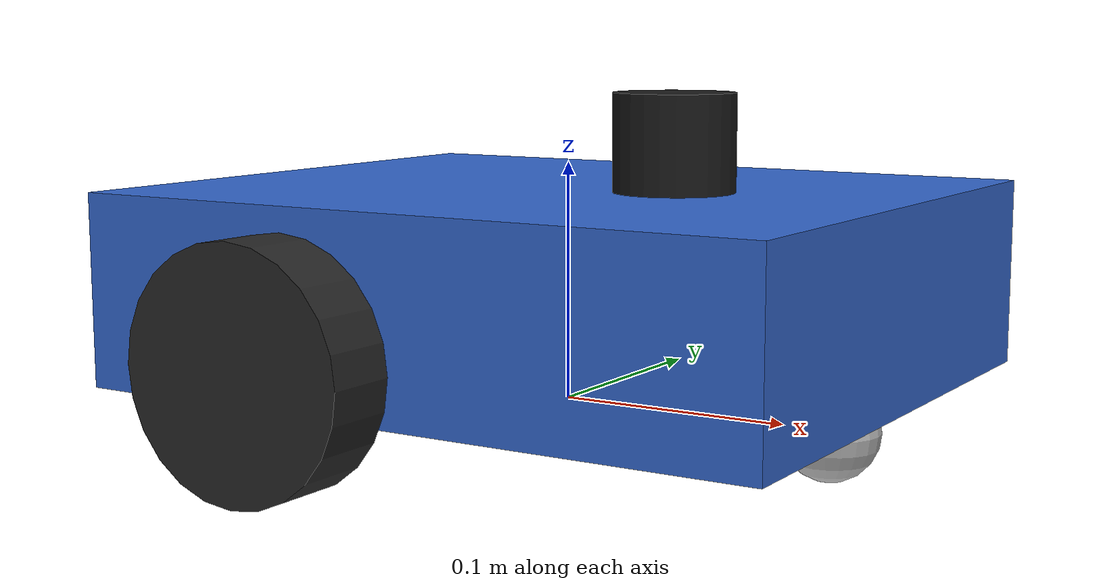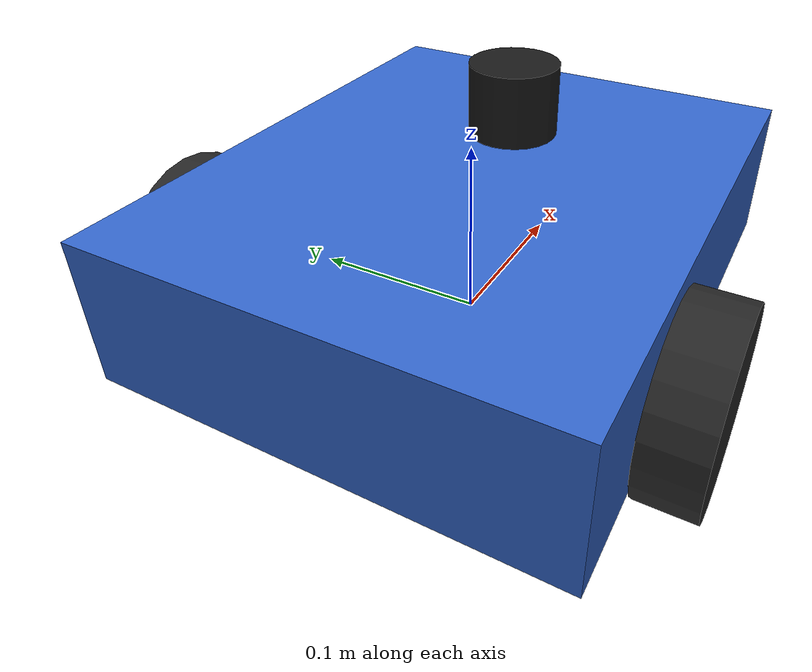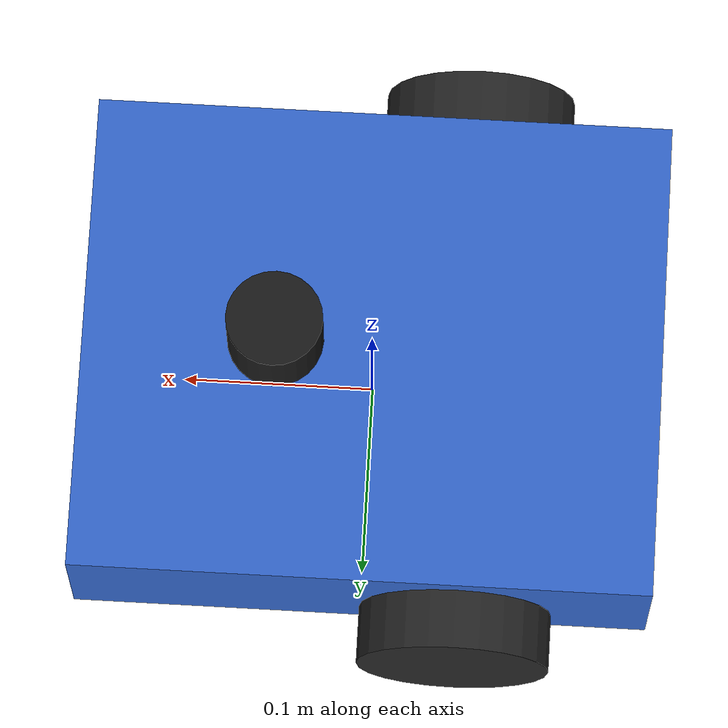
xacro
<?xml version="1.0"?>
<robot xmlns:xacro="http://www.ros.org/wiki/xacro" name="diff_bot">

  <xacro:arg name="robot_name" default="robot_1"/>
  <xacro:arg name="robot_ns"   default="robot_1"/>

  <!-- ═══════════════════════════════════════
       PROPERTIES
  ═══════════════════════════════════════ -->
  <xacro:property name="chassis_length" value="0.30"/>
  <xacro:property name="chassis_width"  value="0.25"/>
  <xacro:property name="chassis_height" value="0.08"/>
  <xacro:property name="chassis_mass"   value="1.5"/>

  <xacro:property name="wheel_radius"   value="0.05"/>
  <xacro:property name="wheel_width"    value="0.03"/>
  <xacro:property name="wheel_mass"     value="0.1"/>
  <xacro:property name="wheel_offset_y" value="0.14"/>
  <xacro:property name="wheel_offset_z" value="-0.02"/>

  <xacro:property name="caster_radius"  value="0.02"/>
  <xacro:property name="caster_mass"    value="0.05"/>

  <xacro:property name="lidar_radius"   value="0.025"/>
  <xacro:property name="lidar_height"   value="0.04"/>
  <xacro:property name="lidar_mass"     value="0.1"/>

  <!-- ═══════════════════════════════════════
       INERTIA MACROS
  ═══════════════════════════════════════ -->
  <xacro:macro name="box_inertia" params="m l w h">
    <inertial>
      <mass value="${m}"/>
      <inertia
        ixx="${m*(w*w+h*h)/12}" ixy="0" ixz="0"
        iyy="${m*(l*l+h*h)/12}" iyz="0"
        izz="${m*(l*l+w*w)/12}"/>
    </inertial>
  </xacro:macro>

  <xacro:macro name="cylinder_inertia" params="m r h">
    <inertial>
      <mass value="${m}"/>
      <inertia
        ixx="${m*(3*r*r+h*h)/12}" ixy="0" ixz="0"
        iyy="${m*(3*r*r+h*h)/12}" iyz="0"
        izz="${m*r*r/2}"/>
    </inertial>
  </xacro:macro>

  <xacro:macro name="sphere_inertia" params="m r">
    <inertial>
      <mass value="${m}"/>
      <inertia
        ixx="${2*m*r*r/5}" ixy="0" ixz="0"
        iyy="${2*m*r*r/5}" iyz="0"
        izz="${2*m*r*r/5}"/>
    </inertial>
  </xacro:macro>

  <!-- ═══════════════════════════════════════
       BASE FOOTPRINT  (ground-plane reference)
  ═══════════════════════════════════════ -->
  <link name="base_footprint"/>

  <joint name="base_footprint_joint" type="fixed">
    <parent link="base_footprint"/>
    <child  link="base_link"/>
    <origin xyz="0 0 ${wheel_radius}" rpy="0 0 0"/>
  </joint>

  <!-- ═══════════════════════════════════════
       CHASSIS
  ═══════════════════════════════════════ -->
  <link name="base_link">
    <visual>
      <geometry>
        <box size="${chassis_length} ${chassis_width} ${chassis_height}"/>
      </geometry>
      <material name="blue">
        <color rgba="0.2 0.4 0.8 1.0"/>
      </material>
    </visual>
    <collision>
      <geometry>
        <box size="${chassis_length} ${chassis_width} ${chassis_height}"/>
      </geometry>
    </collision>
    <xacro:box_inertia m="${chassis_mass}"
      l="${chassis_length}" w="${chassis_width}" h="${chassis_height}"/>
  </link>

  <!-- ═══════════════════════════════════════
       WHEEL MACRO
  ═══════════════════════════════════════ -->
  <xacro:macro name="wheel" params="name y_reflect">
    <link name="${name}_wheel">
      <visual>
        <origin xyz="0 0 0" rpy="${pi/2} 0 0"/>
        <geometry>
          <cylinder radius="${wheel_radius}" length="${wheel_width}"/>
        </geometry>
        <material name="dark_grey">
          <color rgba="0.15 0.15 0.15 1.0"/>
        </material>
      </visual>
      <collision>
        <origin xyz="0 0 0" rpy="${pi/2} 0 0"/>
        <geometry>
          <cylinder radius="${wheel_radius}" length="${wheel_width}"/>
        </geometry>
      </collision>
      <xacro:cylinder_inertia m="${wheel_mass}"
        r="${wheel_radius}" h="${wheel_width}"/>
    </link>

    <joint name="${name}_wheel_joint" type="continuous">
      <parent link="base_link"/>
      <child  link="${name}_wheel"/>
      <origin xyz="-0.05 ${y_reflect * wheel_offset_y} ${wheel_offset_z}"
              rpy="0 0 0"/>
      <axis xyz="0 1 0"/>
    </joint>
  </xacro:macro>

  <xacro:wheel name="left"  y_reflect="1"/>
  <xacro:wheel name="right" y_reflect="-1"/>

  <!-- ═══════════════════════════════════════
       CASTER WHEEL  (front)
  ═══════════════════════════════════════ -->
  <link name="caster_wheel">
    <visual>
      <geometry>
        <sphere radius="${caster_radius}"/>
      </geometry>
      <material name="light_grey">
        <color rgba="0.7 0.7 0.7 1.0"/>
      </material>
    </visual>
    <collision>
      <geometry>
        <sphere radius="${caster_radius}"/>
      </geometry>
    </collision>
    <xacro:sphere_inertia m="${caster_mass}" r="${caster_radius}"/>
  </link>

  <joint name="caster_wheel_joint" type="fixed">
    <parent link="base_link"/>
    <child  link="caster_wheel"/>
    <origin xyz="${chassis_length/2 - 0.03} 0 ${-chassis_height/2 - caster_radius + 0.01}"
            rpy="0 0 0"/>
    <!-- Frictionless caster — no lateral resistance -->
    <dynamics damping="0.0" friction="0.0"/>
  </joint>

  <!-- Gazebo frictionless surface for caster -->
  <gazebo reference="caster_wheel">
    <mu1>0.0</mu1>
    <mu2>0.0</mu2>
    <kp>1000000.0</kp>
    <kd>100.0</kd>
  </gazebo>

  <!-- ═══════════════════════════════════════
       LIDAR LINK  (was missing — added)
  ═══════════════════════════════════════ -->
  <link name="lidar_link">
    <visual>
      <geometry>
        <cylinder radius="${lidar_radius}" length="${lidar_height}"/>
      </geometry>
      <material name="black">
        <color rgba="0.1 0.1 0.1 1.0"/>
      </material>
    </visual>
    <collision>
      <geometry>
        <cylinder radius="${lidar_radius}" length="${lidar_height}"/>
      </geometry>
    </collision>
    <xacro:cylinder_inertia m="${lidar_mass}"
      r="${lidar_radius}" h="${lidar_height}"/>
  </link>

  <joint name="lidar_joint" type="fixed">
    <parent link="base_link"/>
    <child  link="lidar_link"/>
    <origin xyz="0.05 0 ${chassis_height/2 + lidar_height/2}" rpy="0 0 0"/>
  </joint>

  <!-- ═══════════════════════════════════════
       GAZEBO MATERIAL COLOURS
  ═══════════════════════════════════════ -->
  <gazebo reference="base_link">
    <material>Gazebo/Blue</material>
  </gazebo>
  <gazebo reference="left_wheel">
    <material>Gazebo/DarkGrey</material>
    <mu1>1.0</mu1>
    <mu2>1.0</mu2>
  </gazebo>
  <gazebo reference="right_wheel">
    <material>Gazebo/DarkGrey</material>
    <mu1>1.0</mu1>
    <mu2>1.0</mu2>
  </gazebo>
  <gazebo reference="lidar_link">
    <material>Gazebo/Black</material>
  </gazebo>

  <gazebo>
    <plugin name="diff_drive" filename="libgazebo_ros_diff_drive.so">
      <ros>
        <namespace>$(arg robot_ns)</namespace>
      </ros>
      <left_joint>left_wheel_joint</left_joint>
      <right_joint>right_wheel_joint</right_joint>
      <wheel_separation>0.3</wheel_separation>
      <wheel_diameter>0.1</wheel_diameter>
      <max_wheel_torque>20</max_wheel_torque>
      <max_wheel_acceleration>1.0</max_wheel_acceleration>
      <publish_odom>true</publish_odom>
      <publish_odom_tf>true</publish_odom_tf>
      <publish_wheel_tf>false</publish_wheel_tf>
      <!-- FIX: frame names must match namespace, no leading slash -->
      <odometry_frame>$(arg robot_ns)/odom</odometry_frame>
      <robot_base_frame>$(arg robot_ns)/base_footprint</robot_base_frame>
    </plugin>
  </gazebo>

  <gazebo reference="lidar_link">
    <sensor type="ray" name="lidar">
      <always_on>true</always_on>
      <update_rate>10</update_rate>
      <pose>0 0 0 0 0 0</pose>
      <visualize>false</visualize>
      <ray>
        <scan>
          <horizontal>
            <samples>360</samples>
            <resolution>1</resolution>
            <min_angle>-3.14159</min_angle>
            <max_angle>3.14159</max_angle>
          </horizontal>
        </scan>
        <range>
          <min>0.12</min>
          <max>10.0</max>
          <resolution>0.01</resolution>
        </range>
        <noise>
          <type>gaussian</type>
          <mean>0.0</mean>
          <stddev>0.01</stddev>
        </noise>
      </ray>
      <plugin name="lidar_plugin" filename="libgazebo_ros_ray_sensor.so">
        <ros>
          <namespace>$(arg robot_ns)</namespace>
          <remapping>~/out:=scan</remapping>
        </ros>
        <output_type>sensor_msgs/LaserScan</output_type>
        <!-- FIX: frame_name must match namespaced TF frame -->
        <frame_name>$(arg robot_ns)/lidar_link</frame_name>
      </plugin>
    </sensor>
  </gazebo>

</robot>
